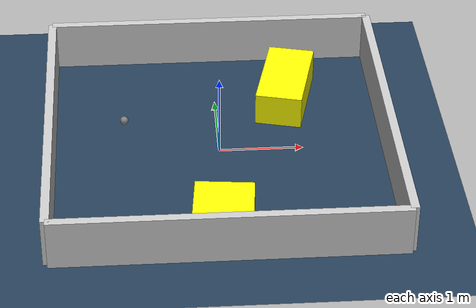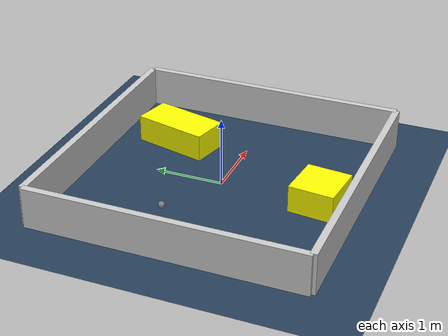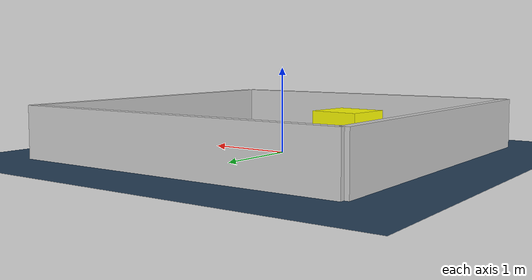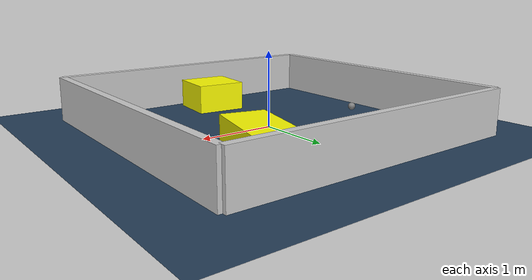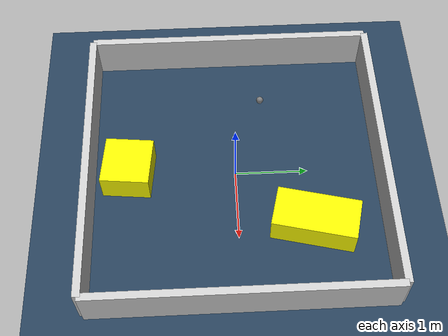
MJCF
<?xml version="1.0" ?>
<mujoco model="generated_environment">
  <option timestep="0.01" integrator="RK4" cone="elliptic"/>
  <default>
    <geom density="1"/>
  </default>
  <asset>
    <texture builtin="gradient" height="3072" rgb1="0.3 0.5 0.7" rgb2="0 0 0" type="skybox" width="512"/>
    <texture builtin="checker" height="300" mark="edge" markrgb="0.8 0.8 0.8" name="groundplane" rgb1="0.2 0.3 0.4" rgb2="0.1 0.2 0.3" type="2d" width="300"/>
    <material name="groundplane" reflectance="0.2" texrepeat="5 5" texture="groundplane" texuniform="true"/>
    <material name="robot" rgba="0.0 1.0 0.0 1"/>
  </asset>
  <worldbody>
    <light dir="0 0 -1" directional="true" pos="0 0 1.5"/>
    <geom condim="4" friction="1.0 0.005 0.001" material="groundplane" name="floor" size="0 0 0.05" type="plane"/>
    <body name="walls">
      <geom name="wall_1" condim="4" pos="-2.0 0.0 0.3" rgba="0.800000011920929 0.800000011920929 0.800000011920929 1.0" size="0.05 2.0 0.3" type="box"/>
      <geom name="wall_2" condim="4" pos="2.0 0.0 0.3" rgba="0.800000011920929 0.800000011920929 0.800000011920929 1.0" size="0.05 2.0 0.3" type="box"/>
      <geom name="wall_3" condim="4" pos="0.0 -2.0 0.3" rgba="0.800000011920929 0.800000011920929 0.800000011920929 1.0" size="2.0 0.05 0.3" type="box"/>
      <geom name="wall_4" condim="4" pos="0.0 2.0 0.3" rgba="0.800000011920929 0.800000011920929 0.800000011920929 1.0" size="2.0 0.05 0.3" type="box"/>
    </body>
    <body name="robot">
      <joint name="joint_x" type="slide" pos="0 0 0" axis="1 0 0"/>
      <joint name="joint_y" type="slide" pos="0 0 0" axis="0 1 0"/>
      <geom name="robot" type="sphere" pos="-1.1261023782404427 0.406026245435239 0.2" size="0.05" mass="5." friction="1.0 0.005 0.0001" condim="4"/>
      <site name="sensor_ball"/>
    </body>
    <body name="obstacle_1_movable">
      <geom name="obstacle_1_movable" condim="4" pos="-0.04120584805883731 -1.4761098228754743 0.2" euler="0 0 354.3138092952112" friction="1.0 0.005 0.001" rgba="1 1 0 1" size="0.34023969774516216 0.3288611576622106 0.2" type="box" mass="0.1"/>
      <joint type="free"/>
    </body>
    <body name="obstacle_2_movable">
      <geom name="obstacle_2_movable" condim="4" pos="0.8790850900895861 1.022445207231341 0.2" euler="0 0 346.22838826336834" friction="1.0 0.005 0.001" rgba="1 1 0 1" size="0.2822385715273363 0.5613133876707546 0.2" type="box" mass="0.1"/>
      <joint type="free"/>
    </body>
  </worldbody>
  <actuator>
    <motor name="actuator_x" joint="joint_x" gear="1" ctrlrange="-1 1"/>
    <motor name="actuator_y" joint="joint_y" gear="1" ctrlrange="-1 1"/>
  </actuator>
</mujoco>
